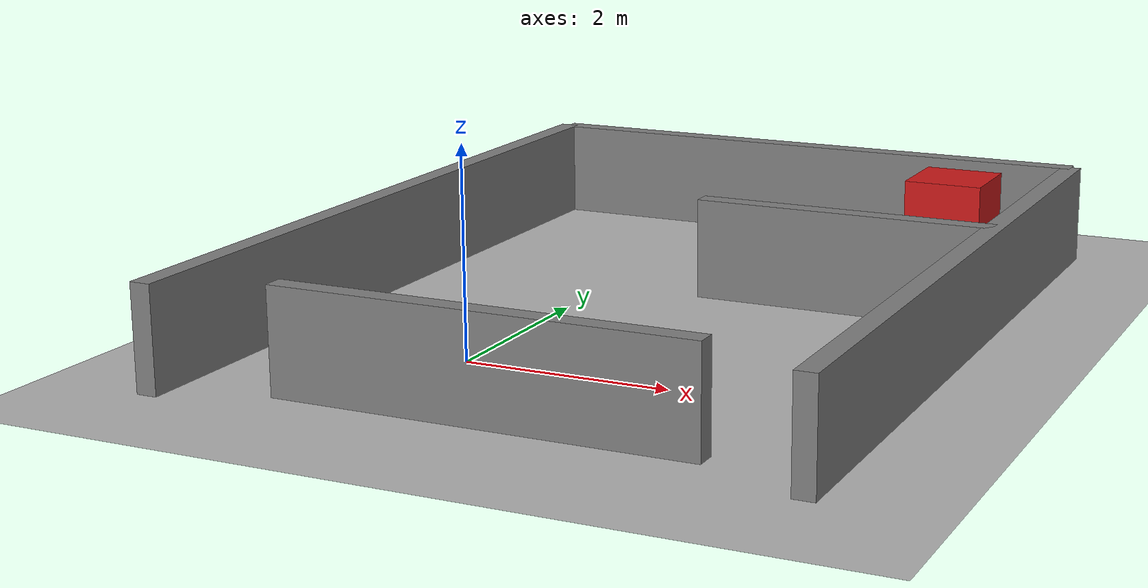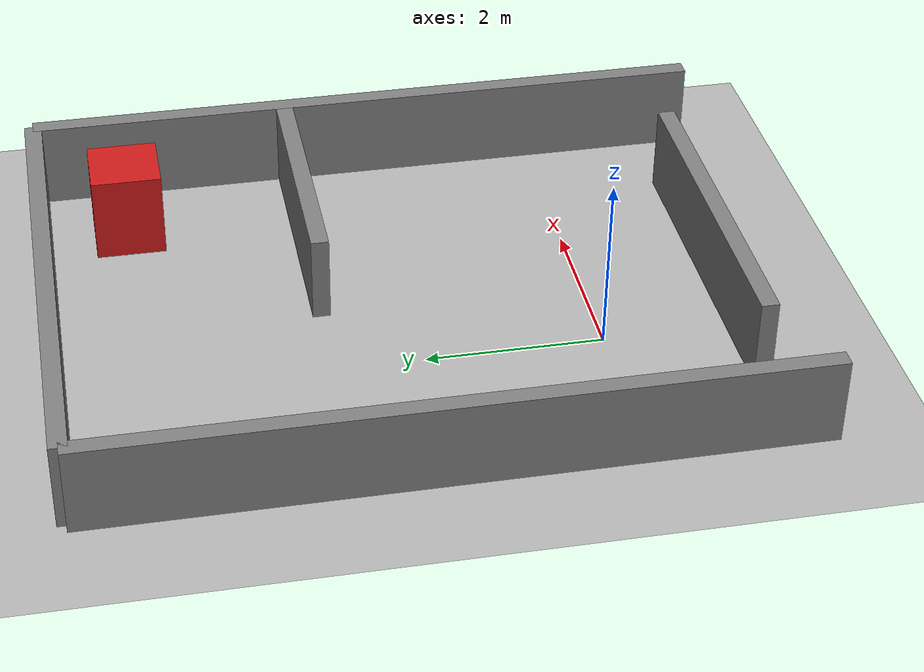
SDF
<?xml version="1.0" ?>
<sdf version="1.8">
  <world name="maze_world">
    <!-- Físicas -->
    <physics name="1ms" type="ignored">
      <max_step_size>0.001</max_step_size>
      <real_time_factor>1.0</real_time_factor>
    </physics>
    <plugin filename="gz-sim-physics-system" name="gz::sim::systems::Physics"></plugin>
    <plugin filename="gz-sim-user-commands-system" name="gz::sim::systems::UserCommands"></plugin>
    <plugin filename="gz-sim-scene-broadcaster-system" name="gz::sim::systems::SceneBroadcaster"></plugin>

    <!-- Escena global con sombras activadas -->
    <scene>
      <ambient>0.5 0.5 0.5 1.0</ambient>
      <background>0.3 0.5 0.7 1.0</background>
      <shadows>true</shadows>
    </scene>

    <!-- Sol direccional que genera las sombras -->
    <light type="directional" name="sun">
      <cast_shadows>true</cast_shadows>
      <pose>0 0 10 0 0 0</pose>
      <diffuse>0.9 0.9 0.9 1</diffuse>
      <specular>0.2 0.2 0.2 1</specular>
      <direction>-0.3 0.3 -0.9</direction>
    </light>

    <!-- Piso -->
    <model name="ground_plane">
      <static>true</static>
      <link name="link">
        <collision name="collision"><geometry><plane><normal>0 0 1</normal><size>50 50</size></plane></geometry></collision>
        <visual name="visual">
          <geometry><plane><normal>0 0 1</normal><size>50 50</size></plane></geometry>
          <material>
            <ambient>0.7 0.7 0.7 1</ambient>
            <diffuse>0.7 0.7 0.7 1</diffuse>
          </material>
        </visual>
      </link>
    </model>

    <!-- LABERINTO: Paredes perimetrales -->
    <model name="wall_outer_left">
      <pose>-2 2 0.5 0 0 0</pose>
      <static>true</static>
      <link name="link">
        <collision name="col"><geometry><box><size>0.2 8 1</size></box></geometry></collision>
        <visual name="vis">
          <geometry><box><size>0.2 8 1</size></box></geometry>
          <material><ambient>0.4 0.4 0.4 1</ambient><diffuse>0.5 0.5 0.5 1</diffuse></material>
        </visual>
      </link>
    </model>

    <model name="wall_outer_right">
      <pose>4 2 0.5 0 0 0</pose>
      <static>true</static>
      <link name="link">
        <collision name="col"><geometry><box><size>0.2 8 1</size></box></geometry></collision>
        <visual name="vis">
          <geometry><box><size>0.2 8 1</size></box></geometry>
          <material><ambient>0.4 0.4 0.4 1</ambient><diffuse>0.5 0.5 0.5 1</diffuse></material>
        </visual>
      </link>
    </model>

    <model name="wall_outer_top">
      <pose>1 6 0.5 0 0 0</pose>
      <static>true</static>
      <link name="link">
        <collision name="col"><geometry><box><size>6 0.2 1</size></box></geometry></collision>
        <visual name="vis">
          <geometry><box><size>6 0.2 1</size></box></geometry>
          <material><ambient>0.4 0.4 0.4 1</ambient><diffuse>0.5 0.5 0.5 1</diffuse></material>
        </visual>
      </link>
    </model>

    <!-- LABERINTO: Obstáculos internos -->
    <model name="wall_inner_1">
      <pose>1 -1.5 0.5 0 0 0</pose>
      <static>true</static>
      <link name="link">
        <collision name="col"><geometry><box><size>4 0.2 1</size></box></geometry></collision>
        <visual name="vis">
          <geometry><box><size>4 0.2 1</size></box></geometry>
          <material><ambient>0.4 0.4 0.4 1</ambient><diffuse>0.5 0.5 0.5 1</diffuse></material>
        </visual>
      </link>
    </model>

    <model name="wall_inner_2">
      <pose>2.5 3 0.5 0 0 0</pose>
      <static>true</static>
      <link name="link">
        <collision name="col"><geometry><box><size>3 0.2 1</size></box></geometry></collision>
        <visual name="vis">
          <geometry><box><size>3 0.2 1</size></box></geometry>
          <material><ambient>0.4 0.4 0.4 1</ambient><diffuse>0.5 0.5 0.5 1</diffuse></material>
        </visual>
      </link>
    </model>

    <!-- Meta del laberinto (Letrero Rojo) -->
    <model name="hospital_goal">
      <pose>3 5 0.5 0 0 0</pose>
      <static>true</static>
      <link name="link">
        <collision name="col"><geometry><box><size>0.8 0.8 1</size></box></geometry></collision>
        <visual name="vis">
          <geometry><box><size>0.8 0.8 1</size></box></geometry>
          <material><ambient>0.7 0.1 0.1 1</ambient><diffuse>0.8 0.1 0.1 1</diffuse></material>
        </visual>
      </link>
    </model>
  </world>
</sdf>
